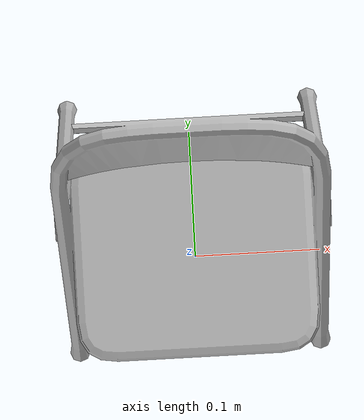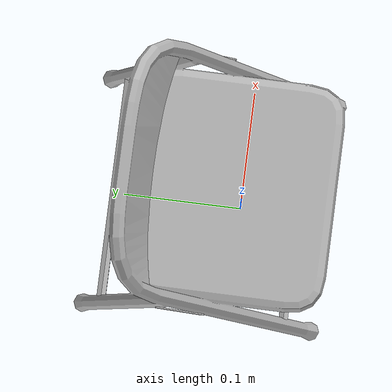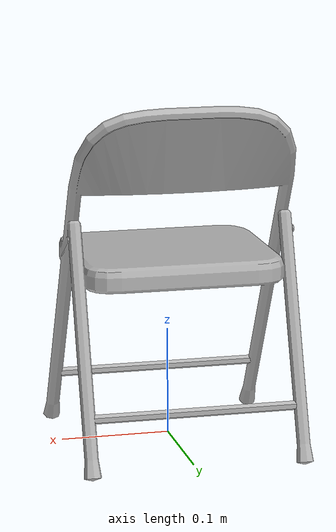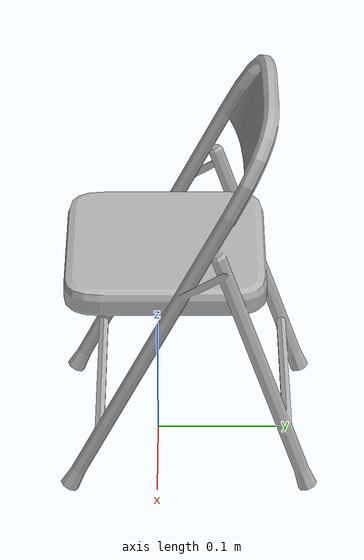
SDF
<?xml version="1.0"?>
<sdf version="1.6">
  <model name="foldable_chair">
    <static>true</static>
    <link name="base_link">
      <visual name="visual">
        <geometry>
          <mesh>
            <scale>0.04 0.04 0.04</scale>
            <uri>mesh/foldable_chair.dae</uri>
          </mesh>
        </geometry>
      </visual>
      <collision name="collision">
        <pose>0 0.02 0.16 0 0 0</pose>
        <geometry>
          <box>
            <size>0.2 0.2 0.32</size>
          </box>
        </geometry>
      </collision>
    </link>
  </model>
</sdf>
